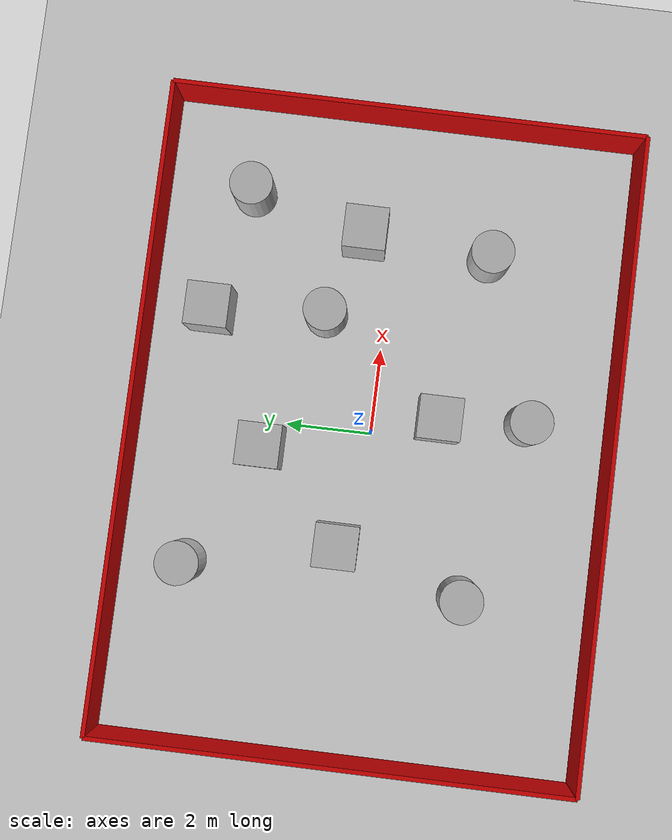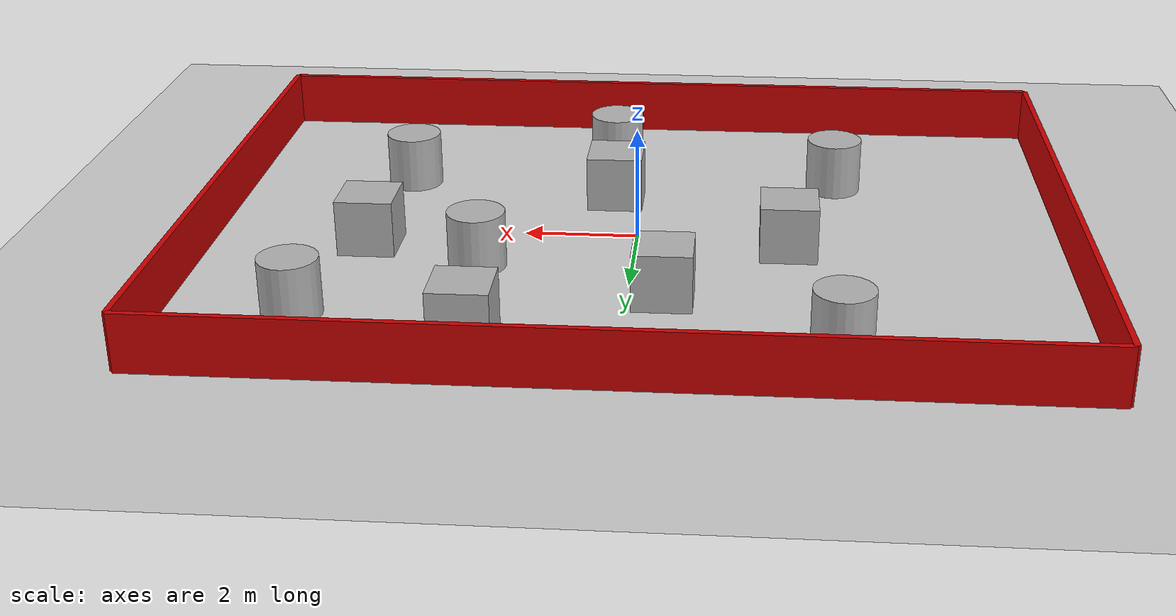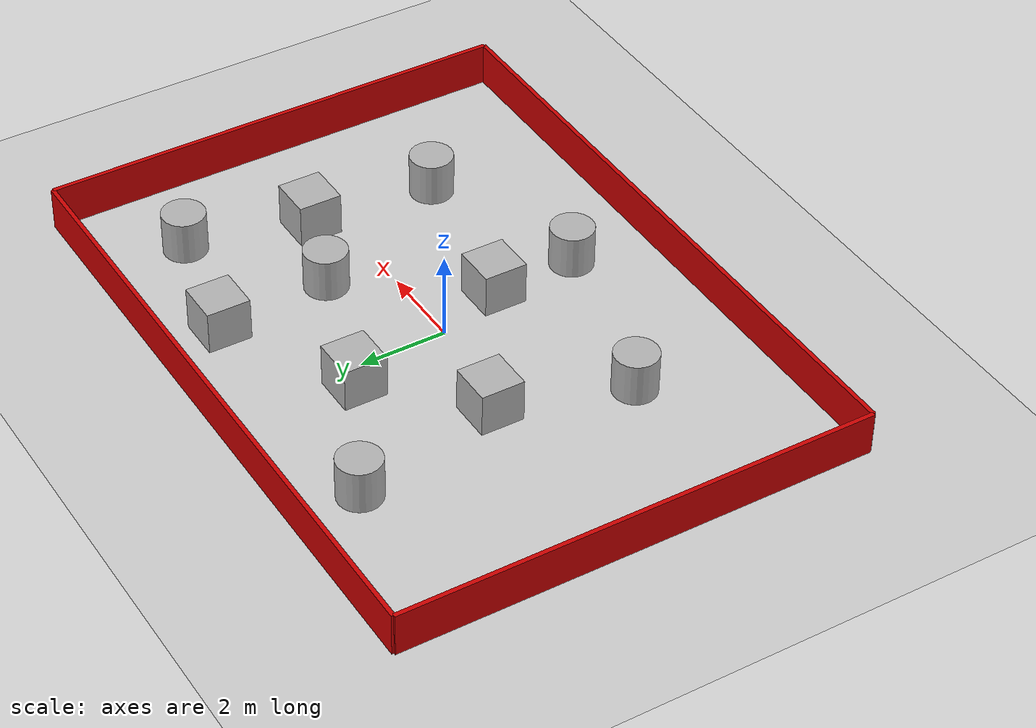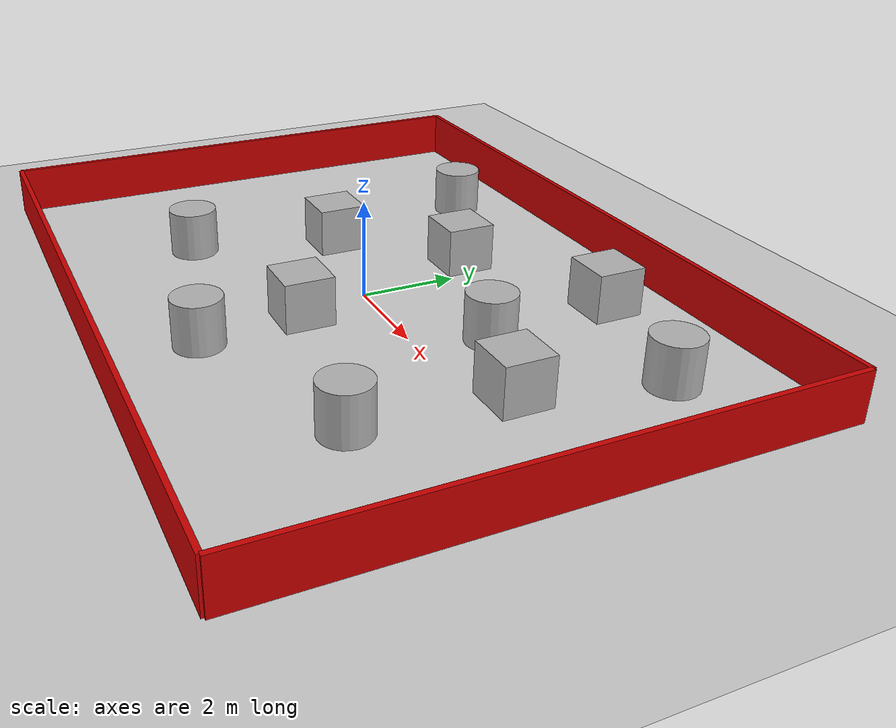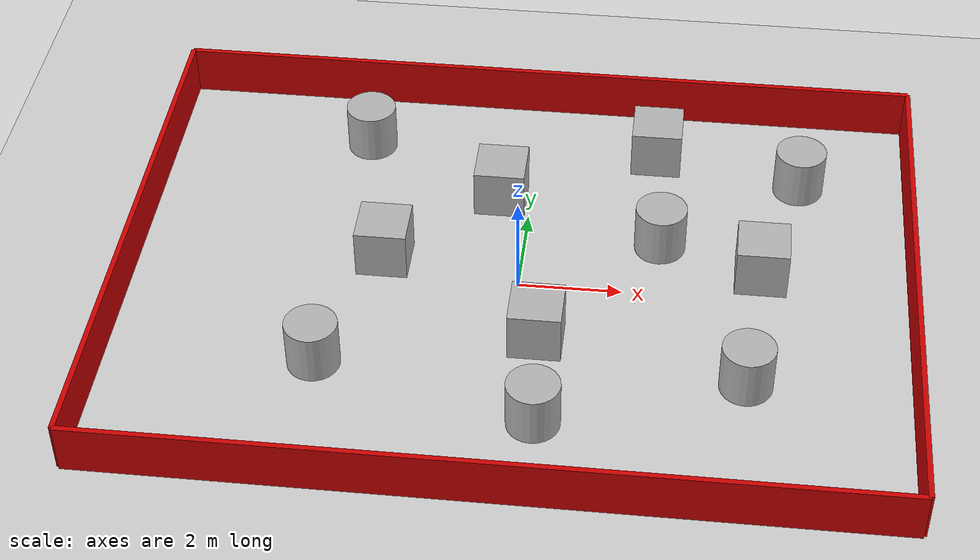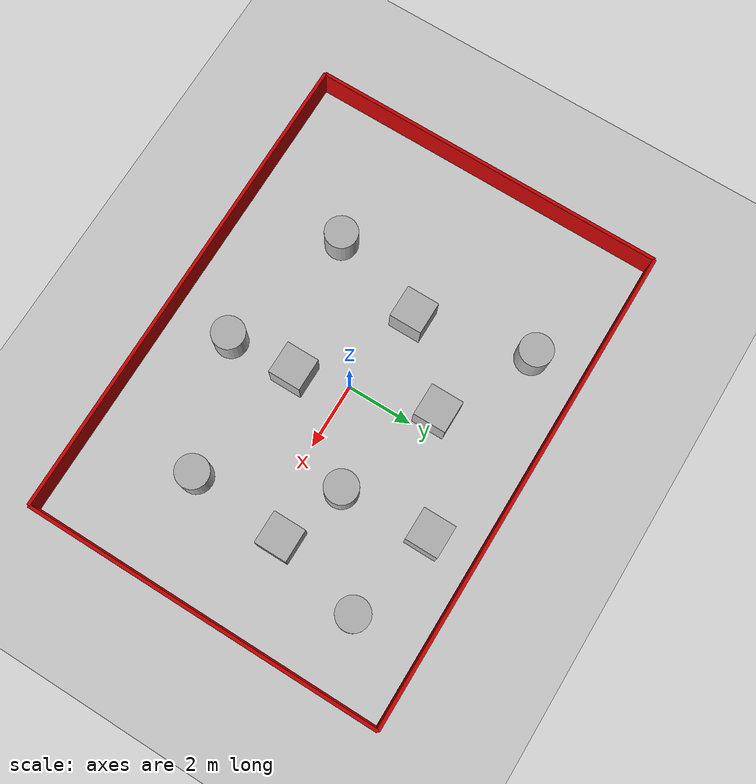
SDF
<sdf version='1.10'>
  <world name='empty'>
    <physics name='1ms' type='ignored'>
      <max_step_size>0.001</max_step_size>
      <real_time_factor>1</real_time_factor>
      <real_time_update_rate>1000</real_time_update_rate>
    </physics>
    <plugin name='gz::sim::systems::Physics' filename='gz-sim-physics-system'/>
    <plugin name='gz::sim::systems::UserCommands' filename='gz-sim-user-commands-system'/>
    <plugin name='gz::sim::systems::SceneBroadcaster' filename='gz-sim-scene-broadcaster-system'/>
    <plugin name='gz::sim::systems::Contact' filename='gz-sim-contact-system'/>    <plugin filename="gz-sim-sensors-system" name="gz::sim::systems::Sensors">
      <render_engine>ogre2</render_engine>
    </plugin>
    <gravity>0 0 -9.8000000000000007</gravity>
    <magnetic_field>5.5644999999999998e-06 2.2875799999999999e-05 -4.2388400000000002e-05</magnetic_field>
    <atmosphere type='adiabatic'/>
    <scene>
      <ambient>0.400000006 0.400000006 0.400000006 1</ambient>
      <background>0.699999988 0.699999988 0.699999988 1</background>
      <shadows>true</shadows>
    </scene>
    <model name='ground_plane'>
      <static>true</static>
      <link name='link'>
        <collision name='collision'>
          <geometry>
            <plane>
              <normal>0 0 1</normal>
              <size>100 100</size>
            </plane>
          </geometry>
          <surface>
            <friction>
              <ode/>
            </friction>
            <bounce/>
            <contact/>
          </surface>
        </collision>
        <visual name='visual'>
          <geometry>
            <plane>
              <normal>0 0 1</normal>
              <size>100 100</size>
            </plane>
          </geometry>
          <material>
            <ambient>0.800000012 0.800000012 0.800000012 1</ambient>
            <diffuse>0.800000012 0.800000012 0.800000012 1</diffuse>
            <specular>0.800000012 0.800000012 0.800000012 1</specular>
          </material>
        </visual>
        <pose>0 0 0 0 0 0</pose>
        <inertial>
          <pose>0 0 0 0 0 0</pose>
          <mass>1</mass>
          <inertia>
            <ixx>1</ixx>
            <ixy>0</ixy>
            <ixz>0</ixz>
            <iyy>1</iyy>
            <iyz>0</iyz>
            <izz>1</izz>
          </inertia>
        </inertial>
        <enable_wind>false</enable_wind>
      </link>
      <pose>0 0 0 0 0 0</pose>
      <self_collide>false</self_collide>
    </model>
    <model name='box'>
      <pose>0.49898400902748108 -1.5204299688339233 0.53792780637741089 0 0 0</pose>
      <link name='box_link'>
        <inertial>
          <inertia>
            <ixx>0.16666</ixx>
            <ixy>0</ixy>
            <ixz>0</ixz>
            <iyy>0.16666</iyy>
            <iyz>0</iyz>
            <izz>0.16666</izz>
          </inertia>
          <mass>1</mass>
          <pose>0 0 0 0 0 0</pose>
        </inertial>
        <collision name='box_collision'>
          <geometry>
            <box>
              <size>1 1 1</size>
            </box>
          </geometry>
          <surface>
            <friction>
              <ode/>
            </friction>
            <bounce/>
            <contact/>
          </surface>
        </collision>
        <visual name='box_visual'>
          <geometry>
            <box>
              <size>1 1 1</size>
            </box>
          </geometry>
          <material>
            <ambient>0.300000012 0.300000012 0.300000012 1</ambient>
            <diffuse>0.699999988 0.699999988 0.699999988 1</diffuse>
            <specular>1 1 1 1</specular>
          </material>
        </visual>
        <pose>0 0 0 0 0 0</pose>
        <enable_wind>false</enable_wind>
      </link>
      <static>false</static>
      <self_collide>false</self_collide>
    </model>
    <model name='box_0'>
      <pose>-0.59368658648294659 2.4874356149491335 0.5 0 0 0</pose>
      <link name='box_link'>
        <inertial>
          <inertia>
            <ixx>0.16666</ixx>
            <ixy>0</ixy>
            <ixz>0</ixz>
            <iyy>0.16666</iyy>
            <iyz>0</iyz>
            <izz>0.16666</izz>
          </inertia>
          <mass>1</mass>
          <pose>0 0 0 0 0 0</pose>
        </inertial>
        <collision name='box_collision'>
          <geometry>
            <box>
              <size>1 1 1</size>
            </box>
          </geometry>
          <surface>
            <friction>
              <ode/>
            </friction>
            <bounce/>
            <contact/>
          </surface>
        </collision>
        <visual name='box_visual'>
          <geometry>
            <box>
              <size>1 1 1</size>
            </box>
          </geometry>
          <material>
            <ambient>0.300000012 0.300000012 0.300000012 1</ambient>
            <diffuse>0.699999988 0.699999988 0.699999988 1</diffuse>
            <specular>1 1 1 1</specular>
          </material>
        </visual>
        <pose>0 0 0 0 0 0</pose>
        <enable_wind>false</enable_wind>
      </link>
      <static>false</static>
      <self_collide>false</self_collide>
    </model>
    <model name='box_1'>
      <pose>4.6351182231834454 0.68251180039861681 0.5 0 0 0</pose>
      <link name='box_link'>
        <inertial>
          <inertia>
            <ixx>0.16666</ixx>
            <ixy>0</ixy>
            <ixz>0</ixz>
            <iyy>0.16666</iyy>
            <iyz>0</iyz>
            <izz>0.16666</izz>
          </inertia>
          <mass>1</mass>
          <pose>0 0 0 0 0 0</pose>
        </inertial>
        <collision name='box_collision'>
          <geometry>
            <box>
              <size>1 1 1</size>
            </box>
          </geometry>
          <surface>
            <friction>
              <ode/>
            </friction>
            <bounce/>
            <contact/>
          </surface>
        </collision>
        <visual name='box_visual'>
          <geometry>
            <box>
              <size>1 1 1</size>
            </box>
          </geometry>
          <material>
            <ambient>0.300000012 0.300000012 0.300000012 1</ambient>
            <diffuse>0.699999988 0.699999988 0.699999988 1</diffuse>
            <specular>1 1 1 1</specular>
          </material>
        </visual>
        <pose>0 0 0 0 0 0</pose>
        <enable_wind>false</enable_wind>
      </link>
      <static>false</static>
      <self_collide>false</self_collide>
    </model>
    <model name='box_2'>
      <pose>2.4364173757054308 4.0506992947366456 0.5 0 0 0</pose>
      <link name='box_link'>
        <inertial>
          <inertia>
            <ixx>0.16666</ixx>
            <ixy>0</ixy>
            <ixz>0</ixz>
            <iyy>0.16666</iyy>
            <iyz>0</iyz>
            <izz>0.16666</izz>
          </inertia>
          <mass>1</mass>
          <pose>0 0 0 0 0 0</pose>
        </inertial>
        <collision name='box_collision'>
          <geometry>
            <box>
              <size>1 1 1</size>
            </box>
          </geometry>
          <surface>
            <friction>
              <ode/>
            </friction>
            <bounce/>
            <contact/>
          </surface>
        </collision>
        <visual name='box_visual'>
          <geometry>
            <box>
              <size>1 1 1</size>
            </box>
          </geometry>
          <material>
            <ambient>0.300000012 0.300000012 0.300000012 1</ambient>
            <diffuse>0.699999988 0.699999988 0.699999988 1</diffuse>
            <specular>1 1 1 1</specular>
          </material>
        </visual>
        <pose>0 0 0 0 0 0</pose>
        <enable_wind>false</enable_wind>
      </link>
      <static>false</static>
      <self_collide>false</self_collide>
    </model>
    <model name='box_3'>
      <pose>-2.6581581760317761 0.47440841985011928 0.5 0 0 0</pose>
      <link name='box_link'>
        <inertial>
          <inertia>
            <ixx>0.16666</ixx>
            <ixy>0</ixy>
            <ixz>0</ixz>
            <iyy>0.16666</iyy>
            <iyz>0</iyz>
            <izz>0.16666</izz>
          </inertia>
          <mass>1</mass>
          <pose>0 0 0 0 0 0</pose>
        </inertial>
        <collision name='box_collision'>
          <geometry>
            <box>
              <size>1 1 1</size>
            </box>
          </geometry>
          <surface>
            <friction>
              <ode/>
            </friction>
            <bounce/>
            <contact/>
          </surface>
        </collision>
        <visual name='box_visual'>
          <geometry>
            <box>
              <size>1 1 1</size>
            </box>
          </geometry>
          <material>
            <ambient>0.300000012 0.300000012 0.300000012 1</ambient>
            <diffuse>0.699999988 0.699999988 0.699999988 1</diffuse>
            <specular>1 1 1 1</specular>
          </material>
        </visual>
        <pose>0 0 0 0 0 0</pose>
        <enable_wind>false</enable_wind>
      </link>
      <static>false</static>
      <self_collide>false</self_collide>
    </model>
    <model name='box_4'>
      <pose>-7.5 0 0.5 0 0 0</pose>
      <link name='box_link'>
        <inertial>
          <inertia>
            <ixx>0.16666</ixx>
            <ixy>0</ixy>
            <ixz>0</ixz>
            <iyy>0.16666</iyy>
            <iyz>0</iyz>
            <izz>0.16666</izz>
          </inertia>
          <mass>1</mass>
          <pose>0 0 0 0 0 0</pose>
        </inertial>
        <collision name='box_collision'>
          <geometry>
            <box>
              <size>0.1 11 1</size>
            </box>
          </geometry>
          <surface>
            <friction>
              <ode/>
            </friction>
            <bounce/>
            <contact/>
          </surface>
        </collision>
        <visual name='box_visual'>
          <geometry>
            <box>
              <size>0.1 11 1</size>>
            </box>
          </geometry>
          <material>
            <ambient>0.300000012 0.300000012 0.300000012 1</ambient>
            <diffuse>0.8 0 0 1</diffuse>
            <specular>1 1 1 1</specular>
          </material>
        </visual>
        <pose>0 0 0 0 0 0</pose>
        <enable_wind>false</enable_wind>
      </link>
      <static>false</static>
      <self_collide>false</self_collide>
    </model>
    <model name='box_5'>
      <pose>7.5 0 0.5 0 0 0</pose>
      <link name='box_link'>
        <inertial>
          <inertia>
            <ixx>0.16666</ixx>
            <ixy>0</ixy>
            <ixz>0</ixz>
            <iyy>0.16666</iyy>
            <iyz>0</iyz>
            <izz>0.16666</izz>
          </inertia>
          <mass>1</mass>
          <pose>0 0 0 0 0 0</pose>
        </inertial>
        <collision name='box_collision'>
          <geometry>
            <box>
              <size>0.1 11 1</size>
            </box>
          </geometry>
          <surface>
            <friction>
              <ode/>
            </friction>
            <bounce/>
            <contact/>
          </surface>
        </collision>
        <visual name='box_visual'>
          <geometry>
            <box>
              <size>0.1 11 1</size>
            </box>
          </geometry>
          <material>
            <ambient>0.300000012 0.300000012 0.300000012 1</ambient>
            <diffuse>0.8 0 0 1</diffuse>
            <specular>1 1 1 1</specular>
          </material>
        </visual>
        <pose>0 0 0 0 0 0</pose>
        <enable_wind>false</enable_wind>
      </link>
      <static>false</static>
      <self_collide>false</self_collide>
    </model>
    <model name='box_6'>
      <pose>0.0 5.5 0.5 0 0 0</pose>
      <link name='box_link'>
        <inertial>
          <inertia>
            <ixx>0.16666</ixx>
            <ixy>0</ixy>
            <ixz>0</ixz>
            <iyy>0.16666</iyy>
            <iyz>0</iyz>
            <izz>0.16666</izz>
          </inertia>
          <mass>1</mass>
          <pose>0 0 0 0 0 0</pose>
        </inertial>
        <collision name='box_collision'>
          <geometry>
            <box>
              <size>15 0.1 1</size>
            </box>
          </geometry>
          <surface>
            <friction>
              <ode/>
            </friction>
            <bounce/>
            <contact/>
          </surface>
        </collision>
        <visual name='box_visual'>
          <geometry>
            <box>
              <size>15 0.1 1</size>
            </box>
          </geometry>
          <material>
            <ambient>0.300000012 0.300000012 0.300000012 1</ambient>
            <diffuse>0.8 0 0 1</diffuse>
            <specular>1 1 1 1</specular>
          </material>
        </visual>
        <pose>0 0 0 0 0 0</pose>
        <enable_wind>false</enable_wind>
      </link>
      <static>false</static>
      <self_collide>false</self_collide>
    </model>
    <model name='box_7'>
      <pose>0.0 -5.5 0.5 0 0 0</pose>
      <link name='box_link'>
        <inertial>
          <inertia>
            <ixx>0.16666</ixx>
            <ixy>0</ixy>
            <ixz>0</ixz>
            <iyy>0.16666</iyy>
            <iyz>0</iyz>
            <izz>0.16666</izz>
          </inertia>
          <mass>1</mass>
          <pose>0 0 0 0 0 0</pose>
        </inertial>
        <collision name='box_collision'>
          <geometry>
            <box>
              <size>15 0.1 1</size>
            </box>
          </geometry>
          <surface>
            <friction>
              <ode/>
            </friction>
            <bounce/>
            <contact/>
          </surface>
        </collision>
        <visual name='box_visual'>
          <geometry>
            <box>
              <size>15 0.1 1</size>
            </box>
          </geometry>
          <material>
            <ambient>0.300000012 0.300000012 0.300000012 1</ambient>
            <diffuse>0.8 0 0 1</diffuse>
            <specular>1 1 1 1</specular>
          </material>
        </visual>
        <pose>0 0 0 0 0 0</pose>
        <enable_wind>false</enable_wind>
      </link>
      <static>false</static>
      <self_collide>false</self_collide>
    </model>
    <model name='cylinder'>
      <pose>4.4171936525658992 -2.2730468020910877 0.5 0 0 0</pose>
      <link name='cylinder_link'>
        <inertial>
          <inertia>
            <ixx>0.14580000000000001</ixx>
            <ixy>0</ixy>
            <ixz>0</ixz>
            <iyy>0.14580000000000001</iyy>
            <iyz>0</iyz>
            <izz>0.125</izz>
          </inertia>
          <mass>1</mass>
          <pose>0 0 0 0 0 0</pose>
        </inertial>
        <collision name='cylinder_collision'>
          <geometry>
            <cylinder>
              <radius>0.5</radius>
              <length>1</length>
            </cylinder>
          </geometry>
          <surface>
            <friction>
              <ode/>
            </friction>
            <bounce/>
            <contact/>
          </surface>
        </collision>
        <visual name='cylinder_visual'>
          <geometry>
            <cylinder>
              <radius>0.5</radius>
              <length>1</length>
            </cylinder>
          </geometry>
          <material>
            <ambient>0.300000012 0.300000012 0.300000012 1</ambient>
            <diffuse>0.699999988 0.699999988 0.699999988 1</diffuse>
            <specular>1 1 1 1</specular>
          </material>
        </visual>
        <pose>0 0 0 0 0 0</pose>
        <enable_wind>false</enable_wind>
      </link>
      <static>false</static>
      <self_collide>false</self_collide>
    </model>
    <model name='cylinder_0'>
      <pose>-3.5361750525852038 -2.4744562317735994 0.5 0 0 0</pose>
      <link name='cylinder_link'>
        <inertial>
          <inertia>
            <ixx>0.14580000000000001</ixx>
            <ixy>0</ixy>
            <ixz>0</ixz>
            <iyy>0.14580000000000001</iyy>
            <iyz>0</iyz>
            <izz>0.125</izz>
          </inertia>
          <mass>1</mass>
          <pose>0 0 0 0 0 0</pose>
        </inertial>
        <collision name='cylinder_collision'>
          <geometry>
            <cylinder>
              <radius>0.5</radius>
              <length>1</length>
            </cylinder>
          </geometry>
          <surface>
            <friction>
              <ode/>
            </friction>
            <bounce/>
            <contact/>
          </surface>
        </collision>
        <visual name='cylinder_visual'>
          <geometry>
            <cylinder>
              <radius>0.5</radius>
              <length>1</length>
            </cylinder>
          </geometry>
          <material>
            <ambient>0.300000012 0.300000012 0.300000012 1</ambient>
            <diffuse>0.699999988 0.699999988 0.699999988 1</diffuse>
            <specular>1 1 1 1</specular>
          </material>
        </visual>
        <pose>0 0 0 0 0 0</pose>
        <enable_wind>false</enable_wind>
      </link>
      <static>false</static>
      <self_collide>false</self_collide>
    </model>
    <model name='cylinder_1'>
      <pose>-3.4463306291448159 3.9552780551418225 0.5 0 0 0</pose>
      <link name='cylinder_link'>
        <inertial>
          <inertia>
            <ixx>0.14580000000000001</ixx>
            <ixy>0</ixy>
            <ixz>0</ixz>
            <iyy>0.14580000000000001</iyy>
            <iyz>0</iyz>
            <izz>0.125</izz>
          </inertia>
          <mass>1</mass>
          <pose>0 0 0 0 0 0</pose>
        </inertial>
        <collision name='cylinder_collision'>
          <geometry>
            <cylinder>
              <radius>0.5</radius>
              <length>1</length>
            </cylinder>
          </geometry>
          <surface>
            <friction>
              <ode/>
            </friction>
            <bounce/>
            <contact/>
          </surface>
        </collision>
        <visual name='cylinder_visual'>
          <geometry>
            <cylinder>
              <radius>0.5</radius>
              <length>1</length>
            </cylinder>
          </geometry>
          <material>
            <ambient>0.300000012 0.300000012 0.300000012 1</ambient>
            <diffuse>0.699999988 0.699999988 0.699999988 1</diffuse>
            <specular>1 1 1 1</specular>
          </material>
        </visual>
        <pose>0 0 0 0 0 0</pose>
        <enable_wind>false</enable_wind>
      </link>
      <static>false</static>
      <self_collide>false</self_collide>
    </model>
    <model name='cylinder_2'>
      <pose>2.6478588328361745 1.3757950910984587 0.5 0 0 0</pose>
      <link name='cylinder_link'>
        <inertial>
          <inertia>
            <ixx>0.14580000000000001</ixx>
            <ixy>0</ixy>
            <ixz>0</ixz>
            <iyy>0.14580000000000001</iyy>
            <iyz>0</iyz>
            <izz>0.125</izz>
          </inertia>
          <mass>1</mass>
          <pose>0 0 0 0 0 0</pose>
        </inertial>
        <collision name='cylinder_collision'>
          <geometry>
            <cylinder>
              <radius>0.5</radius>
              <length>1</length>
            </cylinder>
          </geometry>
          <surface>
            <friction>
              <ode/>
            </friction>
            <bounce/>
            <contact/>
          </surface>
        </collision>
        <visual name='cylinder_visual'>
          <geometry>
            <cylinder>
              <radius>0.5</radius>
              <length>1</length>
            </cylinder>
          </geometry>
          <material>
            <ambient>0.300000012 0.300000012 0.300000012 1</ambient>
            <diffuse>0.699999988 0.699999988 0.699999988 1</diffuse>
            <specular>1 1 1 1</specular>
          </material>
        </visual>
        <pose>0 0 0 0 0 0</pose>
        <enable_wind>false</enable_wind>
      </link>
      <static>false</static>
      <self_collide>false</self_collide>
    </model>
    <model name='cylinder_3'>
      <pose>0.64371683962216153 -3.5846553480499219 0.5 0 0 0</pose>
      <link name='cylinder_link'>
        <inertial>
          <inertia>
            <ixx>0.14580000000000001</ixx>
            <ixy>0</ixy>
            <ixz>0</ixz>
            <iyy>0.14580000000000001</iyy>
            <iyz>0</iyz>
            <izz>0.125</izz>
          </inertia>
          <mass>1</mass>
          <pose>0 0 0 0 0 0</pose>
        </inertial>
        <collision name='cylinder_collision'>
          <geometry>
            <cylinder>
              <radius>0.5</radius>
              <length>1</length>
            </cylinder>
          </geometry>
          <surface>
            <friction>
              <ode/>
            </friction>
            <bounce/>
            <contact/>
          </surface>
        </collision>
        <visual name='cylinder_visual'>
          <geometry>
            <cylinder>
              <radius>0.5</radius>
              <length>1</length>
            </cylinder>
          </geometry>
          <material>
            <ambient>0.300000012 0.300000012 0.300000012 1</ambient>
            <diffuse>0.699999988 0.699999988 0.699999988 1</diffuse>
            <specular>1 1 1 1</specular>
          </material>
        </visual>
        <pose>0 0 0 0 0 0</pose>
        <enable_wind>false</enable_wind>
      </link>
      <static>false</static>
      <self_collide>false</self_collide>
    </model>
    <model name='cylinder_4'>
      <pose>5.3330136489631652 3.4092813319913504 0.5 0 0 0</pose>
      <link name='cylinder_link'>
        <inertial>
          <inertia>
            <ixx>0.14580000000000001</ixx>
            <ixy>0</ixy>
            <ixz>0</ixz>
            <iyy>0.14580000000000001</iyy>
            <iyz>0</iyz>
            <izz>0.125</izz>
          </inertia>
          <mass>1</mass>
          <pose>0 0 0 0 0 0</pose>
        </inertial>
        <collision name='cylinder_collision'>
          <geometry>
            <cylinder>
              <radius>0.5</radius>
              <length>1</length>
            </cylinder>
          </geometry>
          <surface>
            <friction>
              <ode/>
            </friction>
            <bounce/>
            <contact/>
          </surface>
        </collision>
        <visual name='cylinder_visual'>
          <geometry>
            <cylinder>
              <radius>0.5</radius>
              <length>1</length>
            </cylinder>
          </geometry>
          <material>
            <ambient>0.300000012 0.300000012 0.300000012 1</ambient>
            <diffuse>0.699999988 0.699999988 0.699999988 1</diffuse>
            <specular>1 1 1 1</specular>
          </material>
        </visual>
        <pose>0 0 0 0 0 0</pose>
        <enable_wind>false</enable_wind>
      </link>
      <static>false</static>
      <self_collide>false</self_collide>
    </model>
    <light name='sun' type='directional'>
      <pose>0 0 10 0 0 0</pose>
      <cast_shadows>true</cast_shadows>
      <intensity>1</intensity>
      <direction>-0.5 0.10000000000000001 -0.90000000000000002</direction>
      <diffuse>0.800000012 0.800000012 0.800000012 1</diffuse>
      <specular>0.200000003 0.200000003 0.200000003 1</specular>
      <attenuation>
        <range>1000</range>
        <linear>0.01</linear>
        <constant>0.90000000000000002</constant>
        <quadratic>0.001</quadratic>
      </attenuation>
      <spot>
        <inner_angle>0</inner_angle>
        <outer_angle>0</outer_angle>
        <falloff>0</falloff>
      </spot>
    </light>
  </world>
</sdf>
